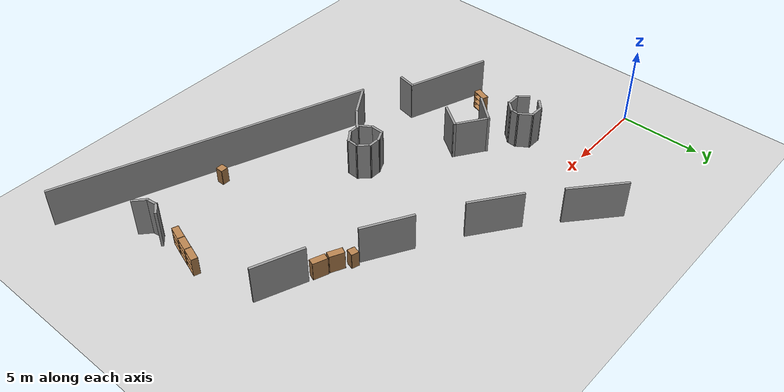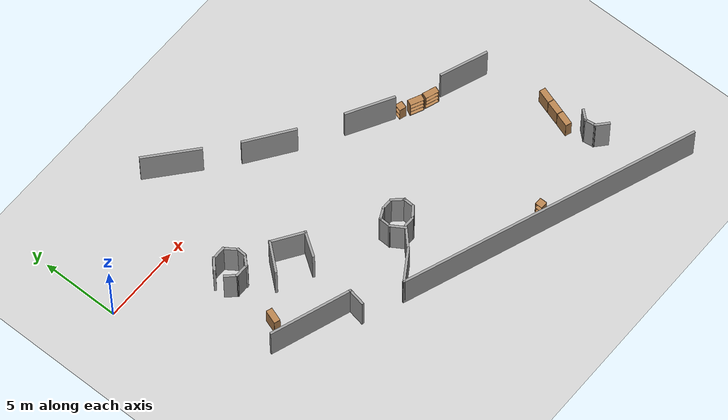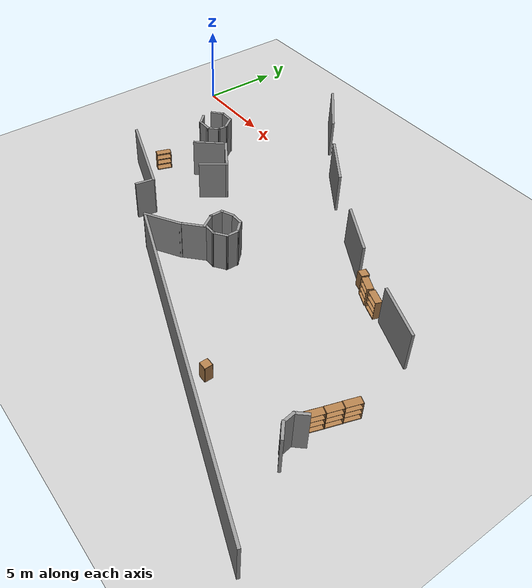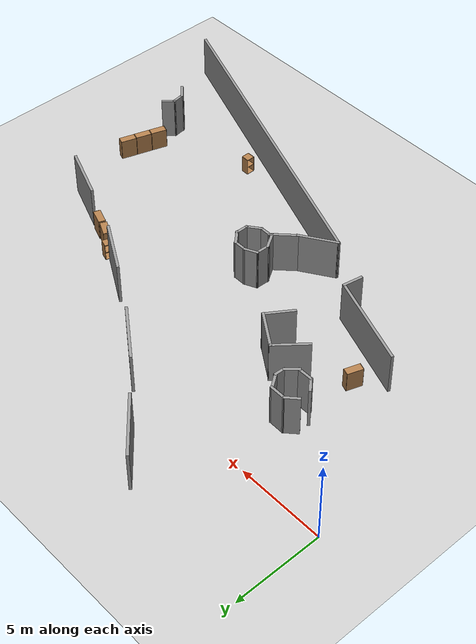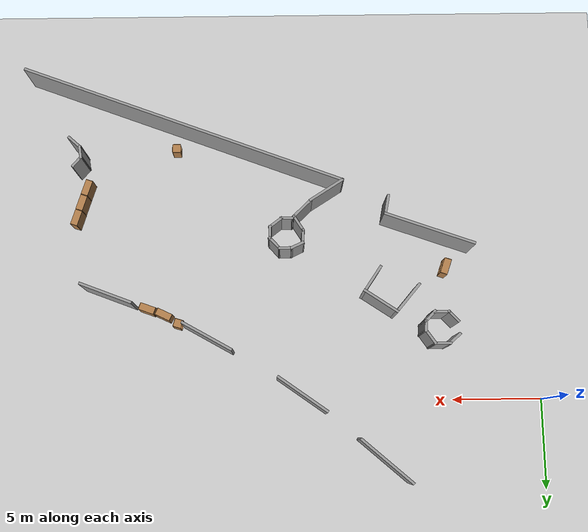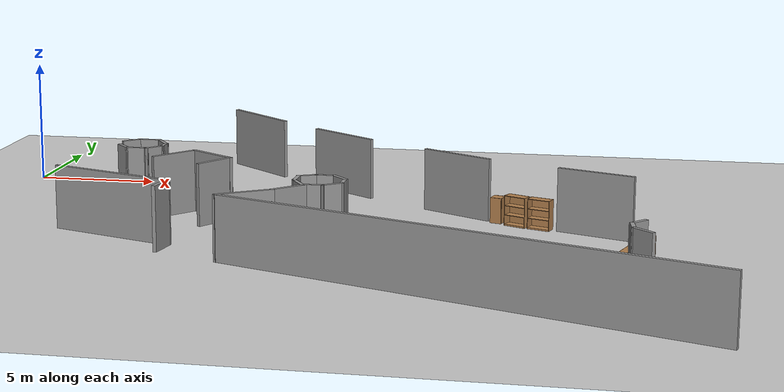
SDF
<sdf version="1.6">
 <world name="default">
  <model name="ground_plane">
   <static>1</static>
   <link name="link">
    <collision name="collision">
     <geometry><plane><normal>0 0 1</normal><size>100 100</size></plane></geometry>
     <surface><friction><ode><mu>100</mu><mu2>50</mu2></ode></friction></surface>
    </collision>
    <visual name="visual">
     <cast_shadows>0</cast_shadows>
     <geometry><plane><normal>0 0 1</normal><size>100 100</size></plane></geometry>
     <material>
      <script><uri>file://media/materials/scripts/gazebo.material</uri><name>Gazebo/Grey</name></script>
     </material>
    </visual>
   </link>
  </model>
  <model name="mall_new_reduce_size">
   <pose>-6.8092 7.5529 0 0 -0 0</pose>
   <link name="Wall_137">
    <collision name="Wall_137_Collision">
     <geometry><box><size>3.68143 0.15 2.5</size></box></geometry>
     <pose>0 0 1.25 0 -0 0</pose>
    </collision>
    <visual name="Wall_137_Visual">
     <pose>0 0 1.25 0 -0 0</pose>
     <geometry><box><size>3.68143 0.15 2.5</size></box></geometry>
     <material>
      <script><uri>file://media/materials/scripts/gazebo.material</uri><name>Gazebo/Grey</name></script>
      <ambient>1 1 1 1</ambient>
     </material>
     <meta><layer>0</layer></meta>
    </visual>
    <pose>15.8732 -4.24673 0 0 -0 -0.713439</pose>
   </link>
   <link name="Wall_140">
    <collision name="Wall_140_Collision">
     <geometry><box><size>3.35827 0.15 2.5</size></box></geometry>
     <pose>0 0 1.25 0 -0 0</pose>
    </collision>
    <visual name="Wall_140_Visual">
     <pose>0 0 1.25 0 -0 0</pose>
     <geometry><box><size>3.35827 0.15 2.5</size></box></geometry>
     <material>
      <script><uri>file://media/materials/scripts/gazebo.material</uri><name>Gazebo/Grey</name></script>
      <ambient>1 1 1 1</ambient>
     </material>
     <meta><layer>0</layer></meta>
    </visual>
    <pose>20.3327 -7.86303 0 0 -0 -0.619292</pose>
   </link>
   <link name="Wall_143">
    <collision name="Wall_143_Collision">
     <geometry><box><size>3.17972 0.15 2.5</size></box></geometry>
     <pose>0 0 1.25 0 -0 0</pose>
    </collision>
    <visual name="Wall_143_Visual">
     <pose>0 0 1.25 0 -0 0</pose>
     <geometry><box><size>3.17972 0.15 2.5</size></box></geometry>
     <material>
      <script><uri>file://media/materials/scripts/gazebo.material</uri><name>Gazebo/Grey</name></script>
      <ambient>1 1 1 1</ambient>
     </material>
     <meta><layer>0</layer></meta>
    </visual>
    <pose>25.5439 -11.078 0 0 -0 -0.516247</pose>
   </link>
   <link name="Wall_146">
    <collision name="Wall_146_Collision">
     <geometry><box><size>3.13185 0.15 2.5</size></box></geometry>
     <pose>0 0 1.25 0 -0 0</pose>
    </collision>
    <visual name="Wall_146_Visual">
     <pose>0 0 1.25 0 -0 0</pose>
     <geometry><box><size>3.13185 0.15 2.5</size></box></geometry>
     <material>
      <script><uri>file://media/materials/scripts/gazebo.material</uri><name>Gazebo/Grey</name></script>
      <ambient>1 1 1 1</ambient>
     </material>
     <meta><layer>0</layer></meta>
    </visual>
    <pose>31.1319 -13.5209 0 0 -0 -0.367866</pose>
   </link>
   <link name="Wall_197">
    <collision name="Wall_197_Collision">
     <geometry><box><size>0.959364 0.15 2.5</size></box></geometry>
     <pose>0 0 1.25 0 -0 0</pose>
    </collision>
    <visual name="Wall_197_Visual">
     <pose>0 0 1.25 0 -0 0</pose>
     <geometry><box><size>0.959364 0.15 2.5</size></box></geometry>
     <material>
      <script><uri>file://media/materials/scripts/gazebo.material</uri><name>Gazebo/Grey</name></script>
      <ambient>1 1 1 1</ambient>
     </material>
     <meta><layer>0</layer></meta>
    </visual>
    <pose>33.0516 -22.1883 0 0 -0 2.40775</pose>
   </link>
   <link name="Wall_198">
    <collision name="Wall_198_Collision">
     <geometry><box><size>0.773848 0.15 2.5</size></box></geometry>
     <pose>0 0 1.25 0 -0 0</pose>
    </collision>
    <visual name="Wall_198_Visual">
     <pose>0 0 1.25 0 -0 0</pose>
     <geometry><box><size>0.773848 0.15 2.5</size></box></geometry>
     <material>
      <script><uri>file://media/materials/scripts/gazebo.material</uri><name>Gazebo/Grey</name></script>
      <ambient>1 1 1 1</ambient>
     </material>
     <meta><layer>0</layer></meta>
    </visual>
    <pose>32.7095 -21.6007 0 0 -0 1.70458</pose>
   </link>
   <link name="Wall_199">
    <collision name="Wall_199_Collision">
     <geometry><box><size>0.798164 0.15 2.5</size></box></geometry>
     <pose>0 0 1.25 0 -0 0</pose>
    </collision>
    <visual name="Wall_199_Visual">
     <pose>0 0 1.25 0 -0 0</pose>
     <geometry><box><size>0.798164 0.15 2.5</size></box></geometry>
     <material>
      <script><uri>file://media/materials/scripts/gazebo.material</uri><name>Gazebo/Grey</name></script>
      <ambient>1 1 1 1</ambient>
     </material>
     <meta><layer>0</layer></meta>
    </visual>
    <pose>32.8802 -21.032 0 0 -0 0.856375</pose>
   </link>
   <link name="Wall_205">
    <collision name="Wall_205_Collision">
     <geometry><box><size>19.4256 0.15 2.5</size></box></geometry>
     <pose>0 0 1.25 0 -0 0</pose>
    </collision>
    <visual name="Wall_205_Visual">
     <pose>0 0 1.25 0 -0 0</pose>
     <geometry><box><size>19.4256 0.15 2.5</size></box></geometry>
     <material>
      <script><uri>file://media/materials/scripts/gazebo.material</uri><name>Gazebo/Grey</name></script>
      <ambient>1 1 1 1</ambient>
     </material>
     <meta><layer>0</layer></meta>
    </visual>
    <pose>26.9482 -23.2 0 0 -0 2.78246</pose>
   </link>
   <link name="Wall_207">
    <collision name="Wall_207_Collision">
     <geometry><box><size>2.2822 0.15 2.5</size></box></geometry>
     <pose>0 0 1.25 0 -0 0</pose>
    </collision>
    <visual name="Wall_207_Visual">
     <pose>0 0 1.25 0 -0 0</pose>
     <geometry><box><size>2.2822 0.15 2.5</size></box></geometry>
     <material>
      <script><uri>file://media/materials/scripts/gazebo.material</uri><name>Gazebo/Grey</name></script>
      <ambient>1 1 1 1</ambient>
     </material>
     <meta><layer>0</layer></meta>
    </visual>
    <pose>18.8386 -19.2246 0 0 -0 0.567895</pose>
   </link>
   <link name="Wall_208">
    <collision name="Wall_208_Collision">
     <geometry><box><size>1.61268 0.15 2.5</size></box></geometry>
     <pose>0 0 1.25 0 -0 0</pose>
    </collision>
    <visual name="Wall_208_Visual">
     <pose>0 0 1.25 0 -0 0</pose>
     <geometry><box><size>1.61268 0.15 2.5</size></box></geometry>
     <material>
      <script><uri>file://media/materials/scripts/gazebo.material</uri><name>Gazebo/Grey</name></script>
      <ambient>1 1 1 1</ambient>
     </material>
     <meta><layer>0</layer></meta>
    </visual>
    <pose>20.2619 -18.127 0 0 -0 0.770921</pose>
   </link>
   <link name="Wall_211">
    <collision name="Wall_211_Collision">
     <geometry><box><size>0.75 0.15 2.5</size></box></geometry>
     <pose>0 0 1.25 0 -0 0</pose>
    </collision>
    <visual name="Wall_211_Visual">
     <pose>0 0 1.25 0 -0 0</pose>
     <geometry><box><size>0.75 0.15 2.5</size></box></geometry>
     <material>
      <script><uri>file://media/materials/scripts/gazebo.material</uri><name>Gazebo/Grey</name></script>
      <ambient>1 1 1 1</ambient>
     </material>
     <meta><layer>0</layer></meta>
    </visual>
    <pose>21.0865 -17.6175 0 0 -0 0</pose>
   </link>
   <link name="Wall_212">
    <collision name="Wall_212_Collision">
     <geometry><box><size>0.928514 0.15 2.5</size></box></geometry>
     <pose>0 0 1.25 0 -0 0</pose>
    </collision>
    <visual name="Wall_212_Visual">
     <pose>0 0 1.25 0 -0 0</pose>
     <geometry><box><size>0.928514 0.15 2.5</size></box></geometry>
     <material>
      <script><uri>file://media/materials/scripts/gazebo.material</uri><name>Gazebo/Grey</name></script>
      <ambient>1 1 1 1</ambient>
     </material>
     <meta><layer>0</layer></meta>
    </visual>
    <pose>21.6967 -17.3823 0 0 -0 0.648482</pose>
   </link>
   <link name="Wall_213">
    <collision name="Wall_213_Collision">
     <geometry><box><size>0.794621 0.15 2.5</size></box></geometry>
     <pose>0 0 1.25 0 -0 0</pose>
    </collision>
    <visual name="Wall_213_Visual">
     <pose>0 0 1.25 0 -0 0</pose>
     <geometry><box><size>0.794621 0.15 2.5</size></box></geometry>
     <material>
      <script><uri>file://media/materials/scripts/gazebo.material</uri><name>Gazebo/Grey</name></script>
      <ambient>1 1 1 1</ambient>
     </material>
     <meta><layer>0</layer></meta>
    </visual>
    <pose>22.0259 -16.8252 0 0 -0 1.53167</pose>
   </link>
   <link name="Wall_214">
    <collision name="Wall_214_Collision">
     <geometry><box><size>0.927153 0.15 2.5</size></box></geometry>
     <pose>0 0 1.25 0 -0 0</pose>
    </collision>
    <visual name="Wall_214_Visual">
     <pose>0 0 1.25 0 -0 0</pose>
     <geometry><box><size>0.927153 0.15 2.5</size></box></geometry>
     <material>
      <script><uri>file://media/materials/scripts/gazebo.material</uri><name>Gazebo/Grey</name></script>
      <ambient>1 1 1 1</ambient>
     </material>
     <meta><layer>0</layer></meta>
    </visual>
    <pose>21.7755 -16.2107 0 0 -0 2.314</pose>
   </link>
   <link name="Wall_215">
    <collision name="Wall_215_Collision">
     <geometry><box><size>0.819343 0.15 2.5</size></box></geometry>
     <pose>0 0 1.25 0 -0 0</pose>
    </collision>
    <visual name="Wall_215_Visual">
     <pose>0 0 1.25 0 -0 0</pose>
     <geometry><box><size>0.819343 0.15 2.5</size></box></geometry>
     <material>
      <script><uri>file://media/materials/scripts/gazebo.material</uri><name>Gazebo/Grey</name></script>
      <ambient>1 1 1 1</ambient>
     </material>
     <meta><layer>0</layer></meta>
    </visual>
    <pose>21.1716 -15.9246 0 0 -0 3.14159</pose>
   </link>
   <link name="Wall_216">
    <collision name="Wall_216_Collision">
     <geometry><box><size>0.843381 0.15 2.5</size></box></geometry>
     <pose>0 0 1.25 0 -0 0</pose>
    </collision>
    <visual name="Wall_216_Visual">
     <pose>0 0 1.25 0 -0 0</pose>
     <geometry><box><size>0.843381 0.15 2.5</size></box></geometry>
     <material>
      <script><uri>file://media/materials/scripts/gazebo.material</uri><name>Gazebo/Grey</name></script>
      <ambient>1 1 1 1</ambient>
     </material>
     <meta><layer>0</layer></meta>
    </visual>
    <pose>20.5177 -16.0737 0 0 -0 -2.69705</pose>
   </link>
   <link name="Wall_217">
    <collision name="Wall_217_Collision">
     <geometry><box><size>0.856005 0.15 2.5</size></box></geometry>
     <pose>0 0 1.25 0 -0 0</pose>
    </collision>
    <visual name="Wall_217_Visual">
     <pose>0 0 1.25 0 -0 0</pose>
     <geometry><box><size>0.856005 0.15 2.5</size></box></geometry>
     <material>
      <script><uri>file://media/materials/scripts/gazebo.material</uri><name>Gazebo/Grey</name></script>
      <ambient>1 1 1 1</ambient>
     </material>
     <meta><layer>0</layer></meta>
    </visual>
    <pose>20.1932 -16.5819 0 0 -0 -1.60325</pose>
   </link>
   <link name="Wall_218">
    <collision name="Wall_218_Collision">
     <geometry><box><size>1.06985 0.15 2.5</size></box></geometry>
     <pose>0 0 1.25 0 -0 0</pose>
    </collision>
    <visual name="Wall_218_Visual">
     <pose>0 0 1.25 0 -0 0</pose>
     <geometry><box><size>1.06985 0.15 2.5</size></box></geometry>
     <material>
      <script><uri>file://media/materials/scripts/gazebo.material</uri><name>Gazebo/Grey</name></script>
      <ambient>1 1 1 1</ambient>
     </material>
     <meta><layer>0</layer></meta>
    </visual>
    <pose>20.4263 -17.318 0 0 -0 -1.01029</pose>
   </link>
   <link name="Wall_222">
    <collision name="Wall_222_Collision">
     <geometry><box><size>5.33695 0.15 2.5</size></box></geometry>
     <pose>0 0 1.25 0 -0 0</pose>
    </collision>
    <visual name="Wall_222_Visual">
     <pose>0 0 1.25 0 -0 0</pose>
     <geometry><box><size>5.33695 0.15 2.5</size></box></geometry>
     <material>
      <script><uri>file://media/materials/scripts/gazebo.material</uri><name>Gazebo/Grey</name></script>
      <ambient>1 1 1 1</ambient>
     </material>
     <meta><layer>0</layer></meta>
    </visual>
    <pose>13.1136 -16.9614 0 0 -0 -0.339721</pose>
   </link>
   <link name="Wall_223">
    <collision name="Wall_223_Collision">
     <geometry><box><size>1.17859 0.15 2.5</size></box></geometry>
     <pose>0 0 1.25 0 -0 0</pose>
    </collision>
    <visual name="Wall_223_Visual">
     <pose>0 0 1.25 0 -0 0</pose>
     <geometry><box><size>1.17859 0.15 2.5</size></box></geometry>
     <material>
      <script><uri>file://media/materials/scripts/gazebo.material</uri><name>Gazebo/Grey</name></script>
      <ambient>1 1 1 1</ambient>
     </material>
     <meta><layer>0</layer></meta>
    </visual>
    <pose>15.4636 -18.342 0 0 -0 -1.7571</pose>
   </link>
   <link name="Wall_226">
    <collision name="Wall_226_Collision">
     <geometry><box><size>2.09323 0.15 2.5</size></box></geometry>
     <pose>0 0 1.25 0 -0 0</pose>
    </collision>
    <visual name="Wall_226_Visual">
     <pose>0 0 1.25 0 -0 0</pose>
     <geometry><box><size>2.09323 0.15 2.5</size></box></geometry>
     <material>
      <script><uri>file://media/materials/scripts/gazebo.material</uri><name>Gazebo/Grey</name></script>
      <ambient>1 1 1 1</ambient>
     </material>
     <meta><layer>0</layer></meta>
    </visual>
    <pose>14.4531 -13.0477 0 0 -0 0.87023</pose>
   </link>
   <link name="Wall_227">
    <collision name="Wall_227_Collision">
     <geometry><box><size>2.25142 0.15 2.5</size></box></geometry>
     <pose>0 0 1.25 0 -0 0</pose>
    </collision>
    <visual name="Wall_227_Visual">
     <pose>0 0 1.25 0 -0 0</pose>
     <geometry><box><size>2.25142 0.15 2.5</size></box></geometry>
     <material>
      <script><uri>file://media/materials/scripts/gazebo.material</uri><name>Gazebo/Grey</name></script>
      <ambient>1 1 1 1</ambient>
     </material>
     <meta><layer>0</layer></meta>
    </visual>
    <pose>15.9526 -12.9004 0 0 -0 -0.589881</pose>
   </link>
   <link name="Wall_228">
    <collision name="Wall_228_Collision">
     <geometry><box><size>1.74942 0.15 2.5</size></box></geometry>
     <pose>0 0 1.25 0 -0 0</pose>
    </collision>
    <visual name="Wall_228_Visual">
     <pose>0 0 1.25 0 -0 0</pose>
     <geometry><box><size>1.74942 0.15 2.5</size></box></geometry>
     <material>
      <script><uri>file://media/materials/scripts/gazebo.material</uri><name>Gazebo/Grey</name></script>
      <ambient>1 1 1 1</ambient>
     </material>
     <meta><layer>0</layer></meta>
    </visual>
    <pose>16.3774 -14.136 0 0 -0 -2.166</pose>
   </link>
   <link name="Wall_233">
    <collision name="Wall_233_Collision">
     <geometry><box><size>0.875106 0.15 2.5</size></box></geometry>
     <pose>0 0 1.25 0 -0 0</pose>
    </collision>
    <visual name="Wall_233_Visual">
     <pose>0 0 1.25 0 -0 0</pose>
     <geometry><box><size>0.875106 0.15 2.5</size></box></geometry>
     <material>
      <script><uri>file://media/materials/scripts/gazebo.material</uri><name>Gazebo/Grey</name></script>
      <ambient>1 1 1 1</ambient>
     </material>
     <meta><layer>0</layer></meta>
    </visual>
    <pose>11.9788 -10.7757 0 0 -0 0.744506</pose>
   </link>
   <link name="Wall_234">
    <collision name="Wall_234_Collision">
     <geometry><box><size>0.968033 0.15 2.5</size></box></geometry>
     <pose>0 0 1.25 0 -0 0</pose>
    </collision>
    <visual name="Wall_234_Visual">
     <pose>0 0 1.25 0 -0 0</pose>
     <geometry><box><size>0.968033 0.15 2.5</size></box></geometry>
     <material>
      <script><uri>file://media/materials/scripts/gazebo.material</uri><name>Gazebo/Grey</name></script>
      <ambient>1 1 1 1</ambient>
     </material>
     <meta><layer>0</layer></meta>
    </visual>
    <pose>12.6628 -10.5342 0 0 -0 -0.010249</pose>
   </link>
   <link name="Wall_235">
    <collision name="Wall_235_Collision">
     <geometry><box><size>0.995867 0.15 2.5</size></box></geometry>
     <pose>0 0 1.25 0 -0 0</pose>
    </collision>
    <visual name="Wall_235_Visual">
     <pose>0 0 1.25 0 -0 0</pose>
     <geometry><box><size>0.995867 0.15 2.5</size></box></geometry>
     <material>
      <script><uri>file://media/materials/scripts/gazebo.material</uri><name>Gazebo/Grey</name></script>
      <ambient>1 1 1 1</ambient>
     </material>
     <meta><layer>0</layer></meta>
    </visual>
    <pose>13.3057 -10.8851 0 0 -0 -0.96076</pose>
   </link>
   <link name="Wall_236">
    <collision name="Wall_236_Collision">
     <geometry><box><size>0.675613 0.15 2.5</size></box></geometry>
     <pose>0 0 1.25 0 -0 0</pose>
    </collision>
    <visual name="Wall_236_Visual">
     <pose>0 0 1.25 0 -0 0</pose>
     <geometry><box><size>0.675613 0.15 2.5</size></box></geometry>
     <material>
      <script><uri>file://media/materials/scripts/gazebo.material</uri><name>Gazebo/Grey</name></script>
      <ambient>1 1 1 1</ambient>
     </material>
     <meta><layer>0</layer></meta>
    </visual>
    <pose>13.5396 -11.494 0 0 -0 -1.63464</pose>
   </link>
   <link name="Wall_237">
    <collision name="Wall_237_Collision">
     <geometry><box><size>0.890267 0.15 2.5</size></box></geometry>
     <pose>0 0 1.25 0 -0 0</pose>
    </collision>
    <visual name="Wall_237_Visual">
     <pose>0 0 1.25 0 -0 0</pose>
     <geometry><box><size>0.890267 0.15 2.5</size></box></geometry>
     <material>
      <script><uri>file://media/materials/scripts/gazebo.material</uri><name>Gazebo/Grey</name></script>
      <ambient>1 1 1 1</ambient>
     </material>
     <meta><layer>0</layer></meta>
    </visual>
    <pose>13.2722 -12.0203 0 0 -0 -2.31459</pose>
   </link>
   <link name="Wall_238">
    <collision name="Wall_238_Collision">
     <geometry><box><size>0.954271 0.15 2.5</size></box></geometry>
     <pose>0 0 1.25 0 -0 0</pose>
    </collision>
    <visual name="Wall_238_Visual">
     <pose>0 0 1.25 0 -0 0</pose>
     <geometry><box><size>0.954271 0.15 2.5</size></box></geometry>
     <material>
      <script><uri>file://media/materials/scripts/gazebo.material</uri><name>Gazebo/Grey</name></script>
      <ambient>1 1 1 1</ambient>
     </material>
     <meta><layer>0</layer></meta>
    </visual>
    <pose>12.6446 -12.2601 0 0 -0 -3.1391</pose>
   </link>
   <link name="Wall_242">
    <collision name="Wall_242_Collision">
     <geometry><box><size>0.863418 0.15 2.5</size></box></geometry>
     <pose>0 0 1.25 0 -0 0</pose>
    </collision>
    <visual name="Wall_242_Visual">
     <pose>0 0 1.25 0 -0 0</pose>
     <geometry><box><size>0.863418 0.15 2.5</size></box></geometry>
     <material>
      <script><uri>file://media/materials/scripts/gazebo.material</uri><name>Gazebo/Grey</name></script>
      <ambient>1 1 1 1</ambient>
     </material>
     <meta><layer>0</layer></meta>
    </visual>
    <pose>11.9984 -12.001 0 0 -0 2.32428</pose>
   </link>
   <static>1</static>
  </model>
  <model name="cabinet">
   <static>1</static>
   <link name="cabinet_bottom_plate">
    <inertial>
     <pose>0 0 -1 0 -0 0</pose>
     <inertia><ixx>2.05</ixx><ixy>0</ixy><ixz>0</ixz><iyy>2.05</iyy><iyz>0</iyz><izz>2.05</izz></inertia>
     <mass>25</mass>
    </inertial>
    <collision name="cabinet_bottom_plate_geom">
     <pose>0 0 0.01 0 -0 0</pose>
     <geometry><box><size>0.45 0.45 0.02</size></box></geometry>
    </collision>
    <visual name="cabinet_bottom_plate_geom_visual">
     <pose>0 0 0.01 0 -0 0</pose>
     <geometry><box><size>0.45 0.45 0.02</size></box></geometry>
     <material>
      <script><uri>file://media/materials/scripts/gazebo.material</uri><name>Gazebo/Wood</name></script>
     </material>
    </visual>
    <collision name="cabinet_bottom_plate_geom_cabinet_back_plate">
     <pose>0.235 0 0.51 0 -0 0</pose>
     <geometry><box><size>0.02 0.45 1.02</size></box></geometry>
    </collision>
    <visual name="cabinet_bottom_plate_geom_cabinet_back_plate_visual">
     <pose>0.235 0 0.51 0 -0 0</pose>
     <geometry><box><size>0.02 0.45 1.02</size></box></geometry>
     <material>
      <script><uri>file://media/materials/scripts/gazebo.material</uri><name>Gazebo/Wood</name></script>
     </material>
    </visual>
    <collision name="cabinet_bottom_plate_geom_cabinet_left_plate">
     <pose>0 0.235 0.51 0 -0 0</pose>
     <geometry><box><size>0.45 0.02 1.02</size></box></geometry>
    </collision>
    <visual name="cabinet_bottom_plate_geom_cabinet_left_plate_visual">
     <pose>0 0.235 0.51 0 -0 0</pose>
     <geometry><box><size>0.45 0.02 1.02</size></box></geometry>
     <material>
      <script><uri>file://media/materials/scripts/gazebo.material</uri><name>Gazebo/Wood</name></script>
     </material>
    </visual>
    <collision name="cabinet_bottom_plate_geom_cabinet_middle_plate">
     <pose>0 0 0.51 0 -0 0</pose>
     <geometry><box><size>0.45 0.45 0.02</size></box></geometry>
    </collision>
    <visual name="cabinet_bottom_plate_geom_cabinet_middle_plate_visual">
     <pose>0 0 0.51 0 -0 0</pose>
     <geometry><box><size>0.45 0.45 0.02</size></box></geometry>
     <material>
      <script><uri>file://media/materials/scripts/gazebo.material</uri><name>Gazebo/Wood</name></script>
     </material>
    </visual>
    <collision name="cabinet_bottom_plate_geom_cabinet_right_plate">
     <pose>0 -0.235 0.51 0 -0 0</pose>
     <geometry><box><size>0.45 0.02 1.02</size></box></geometry>
    </collision>
    <visual name="cabinet_bottom_plate_geom_cabinet_right_plate_visual">
     <pose>0 -0.235 0.51 0 -0 0</pose>
     <geometry><box><size>0.45 0.02 1.02</size></box></geometry>
     <material>
      <script><uri>file://media/materials/scripts/gazebo.material</uri><name>Gazebo/Wood</name></script>
     </material>
    </visual>
    <collision name="cabinet_bottom_plate_geom_cabinet_top_plate">
     <pose>0 0 1.01 0 -0 0</pose>
     <geometry><box><size>0.45 0.45 0.02</size></box></geometry>
    </collision>
    <visual name="cabinet_bottom_plate_geom_cabinet_top_plate_visual">
     <pose>0 0 1.01 0 -0 0</pose>
     <geometry><box><size>0.45 0.45 0.02</size></box></geometry>
     <material>
      <script><uri>file://media/materials/scripts/gazebo.material</uri><name>Gazebo/Wood</name></script>
     </material>
    </visual>
   </link>
   <pose>20.618 -14.6754 0 0 -0 0</pose>
  </model>
  <model name="cabinet_0">
   <static>1</static>
   <link name="cabinet_bottom_plate">
    <inertial>
     <pose>0 0 -1 0 -0 0</pose>
     <inertia><ixx>2.05</ixx><ixy>0</ixy><ixz>0</ixz><iyy>2.05</iyy><iyz>0</iyz><izz>2.05</izz></inertia>
     <mass>25</mass>
    </inertial>
    <collision name="cabinet_bottom_plate_geom">
     <pose>0 0 0.01 0 -0 0</pose>
     <geometry><box><size>0.45 0.45 0.02</size></box></geometry>
    </collision>
    <visual name="cabinet_bottom_plate_geom_visual">
     <pose>0 0 0.01 0 -0 0</pose>
     <geometry><box><size>0.45 0.45 0.02</size></box></geometry>
     <material>
      <script><uri>file://media/materials/scripts/gazebo.material</uri><name>Gazebo/Wood</name></script>
     </material>
    </visual>
    <collision name="cabinet_bottom_plate_geom_cabinet_back_plate">
     <pose>0.235 0 0.51 0 -0 0</pose>
     <geometry><box><size>0.02 0.45 1.02</size></box></geometry>
    </collision>
    <visual name="cabinet_bottom_plate_geom_cabinet_back_plate_visual">
     <pose>0.235 0 0.51 0 -0 0</pose>
     <geometry><box><size>0.02 0.45 1.02</size></box></geometry>
     <material>
      <script><uri>file://media/materials/scripts/gazebo.material</uri><name>Gazebo/Wood</name></script>
     </material>
    </visual>
    <collision name="cabinet_bottom_plate_geom_cabinet_left_plate">
     <pose>0 0.235 0.51 0 -0 0</pose>
     <geometry><box><size>0.45 0.02 1.02</size></box></geometry>
    </collision>
    <visual name="cabinet_bottom_plate_geom_cabinet_left_plate_visual">
     <pose>0 0.235 0.51 0 -0 0</pose>
     <geometry><box><size>0.45 0.02 1.02</size></box></geometry>
     <material>
      <script><uri>file://media/materials/scripts/gazebo.material</uri><name>Gazebo/Wood</name></script>
     </material>
    </visual>
    <collision name="cabinet_bottom_plate_geom_cabinet_middle_plate">
     <pose>0 0 0.51 0 -0 0</pose>
     <geometry><box><size>0.45 0.45 0.02</size></box></geometry>
    </collision>
    <visual name="cabinet_bottom_plate_geom_cabinet_middle_plate_visual">
     <pose>0 0 0.51 0 -0 0</pose>
     <geometry><box><size>0.45 0.45 0.02</size></box></geometry>
     <material>
      <script><uri>file://media/materials/scripts/gazebo.material</uri><name>Gazebo/Wood</name></script>
     </material>
    </visual>
    <collision name="cabinet_bottom_plate_geom_cabinet_right_plate">
     <pose>0 -0.235 0.51 0 -0 0</pose>
     <geometry><box><size>0.45 0.02 1.02</size></box></geometry>
    </collision>
    <visual name="cabinet_bottom_plate_geom_cabinet_right_plate_visual">
     <pose>0 -0.235 0.51 0 -0 0</pose>
     <geometry><box><size>0.45 0.02 1.02</size></box></geometry>
     <material>
      <script><uri>file://media/materials/scripts/gazebo.material</uri><name>Gazebo/Wood</name></script>
     </material>
    </visual>
    <collision name="cabinet_bottom_plate_geom_cabinet_top_plate">
     <pose>0 0 1.01 0 -0 0</pose>
     <geometry><box><size>0.45 0.45 0.02</size></box></geometry>
    </collision>
    <visual name="cabinet_bottom_plate_geom_cabinet_top_plate_visual">
     <pose>0 0 1.01 0 -0 0</pose>
     <geometry><box><size>0.45 0.45 0.02</size></box></geometry>
     <material>
      <script><uri>file://media/materials/scripts/gazebo.material</uri><name>Gazebo/Wood</name></script>
     </material>
    </visual>
   </link>
   <pose>20.4629 -4.41411 0 0 0 -0.291943</pose>
  </model>
  <model name="bookshelf_19">
   <static>1</static>
   <link name="link">
    <inertial><mass>1</mass></inertial>
    <collision name="back">
     <pose>0 0.005 0.6 0 -0 0</pose>
     <geometry><box><size>0.9 0.01 1.2</size></box></geometry>
    </collision>
    <visual name="visual1">
     <pose>0 0.005 0.6 0 -0 0</pose>
     <geometry><box><size>0.9 0.01 1.2</size></box></geometry>
     <material>
      <script><uri>file://media/materials/scripts/gazebo.material</uri><name>Gazebo/Wood</name></script>
     </material>
    </visual>
    <collision name="left_side">
     <pose>0.45 -0.195 0.6 0 -0 0</pose>
     <geometry><box><size>0.02 0.4 1.2</size></box></geometry>
    </collision>
    <visual name="visual2">
     <pose>0.45 -0.195 0.6 0 -0 0</pose>
     <geometry><box><size>0.02 0.4 1.2</size></box></geometry>
     <material>
      <script><uri>file://media/materials/scripts/gazebo.material</uri><name>Gazebo/Wood</name></script>
     </material>
    </visual>
    <collision name="right_side">
     <pose>-0.45 -0.195 0.6 0 -0 0</pose>
     <geometry><box><size>0.02 0.4 1.2</size></box></geometry>
    </collision>
    <visual name="visual3">
     <pose>-0.45 -0.195 0.6 0 -0 0</pose>
     <geometry><box><size>0.02 0.4 1.2</size></box></geometry>
     <material>
      <script><uri>file://media/materials/scripts/gazebo.material</uri><name>Gazebo/Wood</name></script>
     </material>
    </visual>
    <collision name="bottom">
     <pose>0 -0.195 0.03 0 -0 0</pose>
     <geometry><box><size>0.88 0.4 0.06</size></box></geometry>
    </collision>
    <visual name="visual4">
     <pose>0 -0.195 0.03 0 -0 0</pose>
     <geometry><box><size>0.88 0.4 0.06</size></box></geometry>
     <material>
      <script><uri>file://media/materials/scripts/gazebo.material</uri><name>Gazebo/Wood</name></script>
     </material>
    </visual>
    <collision name="top">
     <pose>0 -0.195 1.19 0 -0 0</pose>
     <geometry><box><size>0.88 0.4 0.02</size></box></geometry>
    </collision>
    <visual name="visual5">
     <pose>0 -0.195 1.19 0 -0 0</pose>
     <geometry><box><size>0.88 0.4 0.02</size></box></geometry>
     <material>
      <script><uri>file://media/materials/scripts/gazebo.material</uri><name>Gazebo/Wood</name></script>
     </material>
    </visual>
    <collision name="low_shelf">
     <pose>0 -0.195 0.43 0 -0 0</pose>
     <geometry><box><size>0.88 0.4 0.02</size></box></geometry>
    </collision>
    <visual name="visual6">
     <pose>0 -0.195 0.43 0 -0 0</pose>
     <geometry><box><size>0.88 0.4 0.02</size></box></geometry>
     <material>
      <script><uri>file://media/materials/scripts/gazebo.material</uri><name>Gazebo/Wood</name></script>
     </material>
    </visual>
    <collision name="high_shelf">
     <pose>0 -0.195 0.8 0 -0 0</pose>
     <geometry><box><size>0.88 0.4 0.02</size></box></geometry>
    </collision>
    <visual name="visual7">
     <pose>0 -0.195 0.8 0 -0 0</pose>
     <geometry><box><size>0.88 0.4 0.02</size></box></geometry>
     <material>
      <script><uri>file://media/materials/scripts/gazebo.material</uri><name>Gazebo/Wood</name></script>
     </material>
    </visual>
   </link>
   <pose>5.07083 -7.42391 0 0 -0 1.24027</pose>
  </model>
  <model name="bookshelf_20">
   <static>1</static>
   <link name="link">
    <inertial><mass>1</mass></inertial>
    <collision name="back">
     <pose>0 0.005 0.6 0 -0 0</pose>
     <geometry><box><size>0.9 0.01 1.2</size></box></geometry>
    </collision>
    <visual name="visual1">
     <pose>0 0.005 0.6 0 -0 0</pose>
     <geometry><box><size>0.9 0.01 1.2</size></box></geometry>
     <material>
      <script><uri>file://media/materials/scripts/gazebo.material</uri><name>Gazebo/Wood</name></script>
     </material>
    </visual>
    <collision name="left_side">
     <pose>0.45 -0.195 0.6 0 -0 0</pose>
     <geometry><box><size>0.02 0.4 1.2</size></box></geometry>
    </collision>
    <visual name="visual2">
     <pose>0.45 -0.195 0.6 0 -0 0</pose>
     <geometry><box><size>0.02 0.4 1.2</size></box></geometry>
     <material>
      <script><uri>file://media/materials/scripts/gazebo.material</uri><name>Gazebo/Wood</name></script>
     </material>
    </visual>
    <collision name="right_side">
     <pose>-0.45 -0.195 0.6 0 -0 0</pose>
     <geometry><box><size>0.02 0.4 1.2</size></box></geometry>
    </collision>
    <visual name="visual3">
     <pose>-0.45 -0.195 0.6 0 -0 0</pose>
     <geometry><box><size>0.02 0.4 1.2</size></box></geometry>
     <material>
      <script><uri>file://media/materials/scripts/gazebo.material</uri><name>Gazebo/Wood</name></script>
     </material>
    </visual>
    <collision name="bottom">
     <pose>0 -0.195 0.03 0 -0 0</pose>
     <geometry><box><size>0.88 0.4 0.06</size></box></geometry>
    </collision>
    <visual name="visual4">
     <pose>0 -0.195 0.03 0 -0 0</pose>
     <geometry><box><size>0.88 0.4 0.06</size></box></geometry>
     <material>
      <script><uri>file://media/materials/scripts/gazebo.material</uri><name>Gazebo/Wood</name></script>
     </material>
    </visual>
    <collision name="top">
     <pose>0 -0.195 1.19 0 -0 0</pose>
     <geometry><box><size>0.88 0.4 0.02</size></box></geometry>
    </collision>
    <visual name="visual5">
     <pose>0 -0.195 1.19 0 -0 0</pose>
     <geometry><box><size>0.88 0.4 0.02</size></box></geometry>
     <material>
      <script><uri>file://media/materials/scripts/gazebo.material</uri><name>Gazebo/Wood</name></script>
     </material>
    </visual>
    <collision name="low_shelf">
     <pose>0 -0.195 0.43 0 -0 0</pose>
     <geometry><box><size>0.88 0.4 0.02</size></box></geometry>
    </collision>
    <visual name="visual6">
     <pose>0 -0.195 0.43 0 -0 0</pose>
     <geometry><box><size>0.88 0.4 0.02</size></box></geometry>
     <material>
      <script><uri>file://media/materials/scripts/gazebo.material</uri><name>Gazebo/Wood</name></script>
     </material>
    </visual>
    <collision name="high_shelf">
     <pose>0 -0.195 0.8 0 -0 0</pose>
     <geometry><box><size>0.88 0.4 0.02</size></box></geometry>
    </collision>
    <visual name="visual7">
     <pose>0 -0.195 0.8 0 -0 0</pose>
     <geometry><box><size>0.88 0.4 0.02</size></box></geometry>
     <material>
      <script><uri>file://media/materials/scripts/gazebo.material</uri><name>Gazebo/Wood</name></script>
     </material>
    </visual>
   </link>
   <pose>25.5639 -12.2686 0 0 -0 1.24694</pose>
  </model>
  <model name="bookshelf_21">
   <static>1</static>
   <link name="link">
    <inertial><mass>1</mass></inertial>
    <collision name="back">
     <pose>0 0.005 0.6 0 -0 0</pose>
     <geometry><box><size>0.9 0.01 1.2</size></box></geometry>
    </collision>
    <visual name="visual1">
     <pose>0 0.005 0.6 0 -0 0</pose>
     <geometry><box><size>0.9 0.01 1.2</size></box></geometry>
     <material>
      <script><uri>file://media/materials/scripts/gazebo.material</uri><name>Gazebo/Wood</name></script>
     </material>
    </visual>
    <collision name="left_side">
     <pose>0.45 -0.195 0.6 0 -0 0</pose>
     <geometry><box><size>0.02 0.4 1.2</size></box></geometry>
    </collision>
    <visual name="visual2">
     <pose>0.45 -0.195 0.6 0 -0 0</pose>
     <geometry><box><size>0.02 0.4 1.2</size></box></geometry>
     <material>
      <script><uri>file://media/materials/scripts/gazebo.material</uri><name>Gazebo/Wood</name></script>
     </material>
    </visual>
    <collision name="right_side">
     <pose>-0.45 -0.195 0.6 0 -0 0</pose>
     <geometry><box><size>0.02 0.4 1.2</size></box></geometry>
    </collision>
    <visual name="visual3">
     <pose>-0.45 -0.195 0.6 0 -0 0</pose>
     <geometry><box><size>0.02 0.4 1.2</size></box></geometry>
     <material>
      <script><uri>file://media/materials/scripts/gazebo.material</uri><name>Gazebo/Wood</name></script>
     </material>
    </visual>
    <collision name="bottom">
     <pose>0 -0.195 0.03 0 -0 0</pose>
     <geometry><box><size>0.88 0.4 0.06</size></box></geometry>
    </collision>
    <visual name="visual4">
     <pose>0 -0.195 0.03 0 -0 0</pose>
     <geometry><box><size>0.88 0.4 0.06</size></box></geometry>
     <material>
      <script><uri>file://media/materials/scripts/gazebo.material</uri><name>Gazebo/Wood</name></script>
     </material>
    </visual>
    <collision name="top">
     <pose>0 -0.195 1.19 0 -0 0</pose>
     <geometry><box><size>0.88 0.4 0.02</size></box></geometry>
    </collision>
    <visual name="visual5">
     <pose>0 -0.195 1.19 0 -0 0</pose>
     <geometry><box><size>0.88 0.4 0.02</size></box></geometry>
     <material>
      <script><uri>file://media/materials/scripts/gazebo.material</uri><name>Gazebo/Wood</name></script>
     </material>
    </visual>
    <collision name="low_shelf">
     <pose>0 -0.195 0.43 0 -0 0</pose>
     <geometry><box><size>0.88 0.4 0.02</size></box></geometry>
    </collision>
    <visual name="visual6">
     <pose>0 -0.195 0.43 0 -0 0</pose>
     <geometry><box><size>0.88 0.4 0.02</size></box></geometry>
     <material>
      <script><uri>file://media/materials/scripts/gazebo.material</uri><name>Gazebo/Wood</name></script>
     </material>
    </visual>
    <collision name="high_shelf">
     <pose>0 -0.195 0.8 0 -0 0</pose>
     <geometry><box><size>0.88 0.4 0.02</size></box></geometry>
    </collision>
    <visual name="visual7">
     <pose>0 -0.195 0.8 0 -0 0</pose>
     <geometry><box><size>0.88 0.4 0.02</size></box></geometry>
     <material>
      <script><uri>file://media/materials/scripts/gazebo.material</uri><name>Gazebo/Wood</name></script>
     </material>
    </visual>
   </link>
   <pose>25.8488 -11.3877 0 0 -0 1.25818</pose>
  </model>
  <model name="bookshelf_22">
   <static>1</static>
   <link name="link">
    <inertial><mass>1</mass></inertial>
    <collision name="back">
     <pose>0 0.005 0.6 0 -0 0</pose>
     <geometry><box><size>0.9 0.01 1.2</size></box></geometry>
    </collision>
    <visual name="visual1">
     <pose>0 0.005 0.6 0 -0 0</pose>
     <geometry><box><size>0.9 0.01 1.2</size></box></geometry>
     <material>
      <script><uri>file://media/materials/scripts/gazebo.material</uri><name>Gazebo/Wood</name></script>
     </material>
    </visual>
    <collision name="left_side">
     <pose>0.45 -0.195 0.6 0 -0 0</pose>
     <geometry><box><size>0.02 0.4 1.2</size></box></geometry>
    </collision>
    <visual name="visual2">
     <pose>0.45 -0.195 0.6 0 -0 0</pose>
     <geometry><box><size>0.02 0.4 1.2</size></box></geometry>
     <material>
      <script><uri>file://media/materials/scripts/gazebo.material</uri><name>Gazebo/Wood</name></script>
     </material>
    </visual>
    <collision name="right_side">
     <pose>-0.45 -0.195 0.6 0 -0 0</pose>
     <geometry><box><size>0.02 0.4 1.2</size></box></geometry>
    </collision>
    <visual name="visual3">
     <pose>-0.45 -0.195 0.6 0 -0 0</pose>
     <geometry><box><size>0.02 0.4 1.2</size></box></geometry>
     <material>
      <script><uri>file://media/materials/scripts/gazebo.material</uri><name>Gazebo/Wood</name></script>
     </material>
    </visual>
    <collision name="bottom">
     <pose>0 -0.195 0.03 0 -0 0</pose>
     <geometry><box><size>0.88 0.4 0.06</size></box></geometry>
    </collision>
    <visual name="visual4">
     <pose>0 -0.195 0.03 0 -0 0</pose>
     <geometry><box><size>0.88 0.4 0.06</size></box></geometry>
     <material>
      <script><uri>file://media/materials/scripts/gazebo.material</uri><name>Gazebo/Wood</name></script>
     </material>
    </visual>
    <collision name="top">
     <pose>0 -0.195 1.19 0 -0 0</pose>
     <geometry><box><size>0.88 0.4 0.02</size></box></geometry>
    </collision>
    <visual name="visual5">
     <pose>0 -0.195 1.19 0 -0 0</pose>
     <geometry><box><size>0.88 0.4 0.02</size></box></geometry>
     <material>
      <script><uri>file://media/materials/scripts/gazebo.material</uri><name>Gazebo/Wood</name></script>
     </material>
    </visual>
    <collision name="low_shelf">
     <pose>0 -0.195 0.43 0 -0 0</pose>
     <geometry><box><size>0.88 0.4 0.02</size></box></geometry>
    </collision>
    <visual name="visual6">
     <pose>0 -0.195 0.43 0 -0 0</pose>
     <geometry><box><size>0.88 0.4 0.02</size></box></geometry>
     <material>
      <script><uri>file://media/materials/scripts/gazebo.material</uri><name>Gazebo/Wood</name></script>
     </material>
    </visual>
    <collision name="high_shelf">
     <pose>0 -0.195 0.8 0 -0 0</pose>
     <geometry><box><size>0.88 0.4 0.02</size></box></geometry>
    </collision>
    <visual name="visual7">
     <pose>0 -0.195 0.8 0 -0 0</pose>
     <geometry><box><size>0.88 0.4 0.02</size></box></geometry>
     <material>
      <script><uri>file://media/materials/scripts/gazebo.material</uri><name>Gazebo/Wood</name></script>
     </material>
    </visual>
   </link>
   <pose>26.1269 -10.5065 0 0 -0 1.25332</pose>
  </model>
  <model name="bookshelf_27">
   <static>1</static>
   <link name="link">
    <inertial><mass>1</mass></inertial>
    <collision name="back">
     <pose>0 0.005 0.6 0 -0 0</pose>
     <geometry><box><size>0.9 0.01 1.2</size></box></geometry>
    </collision>
    <visual name="visual1">
     <pose>0 0.005 0.6 0 -0 0</pose>
     <geometry><box><size>0.9 0.01 1.2</size></box></geometry>
     <material>
      <script><uri>file://media/materials/scripts/gazebo.material</uri><name>Gazebo/Wood</name></script>
     </material>
    </visual>
    <collision name="left_side">
     <pose>0.45 -0.195 0.6 0 -0 0</pose>
     <geometry><box><size>0.02 0.4 1.2</size></box></geometry>
    </collision>
    <visual name="visual2">
     <pose>0.45 -0.195 0.6 0 -0 0</pose>
     <geometry><box><size>0.02 0.4 1.2</size></box></geometry>
     <material>
      <script><uri>file://media/materials/scripts/gazebo.material</uri><name>Gazebo/Wood</name></script>
     </material>
    </visual>
    <collision name="right_side">
     <pose>-0.45 -0.195 0.6 0 -0 0</pose>
     <geometry><box><size>0.02 0.4 1.2</size></box></geometry>
    </collision>
    <visual name="visual3">
     <pose>-0.45 -0.195 0.6 0 -0 0</pose>
     <geometry><box><size>0.02 0.4 1.2</size></box></geometry>
     <material>
      <script><uri>file://media/materials/scripts/gazebo.material</uri><name>Gazebo/Wood</name></script>
     </material>
    </visual>
    <collision name="bottom">
     <pose>0 -0.195 0.03 0 -0 0</pose>
     <geometry><box><size>0.88 0.4 0.06</size></box></geometry>
    </collision>
    <visual name="visual4">
     <pose>0 -0.195 0.03 0 -0 0</pose>
     <geometry><box><size>0.88 0.4 0.06</size></box></geometry>
     <material>
      <script><uri>file://media/materials/scripts/gazebo.material</uri><name>Gazebo/Wood</name></script>
     </material>
    </visual>
    <collision name="top">
     <pose>0 -0.195 1.19 0 -0 0</pose>
     <geometry><box><size>0.88 0.4 0.02</size></box></geometry>
    </collision>
    <visual name="visual5">
     <pose>0 -0.195 1.19 0 -0 0</pose>
     <geometry><box><size>0.88 0.4 0.02</size></box></geometry>
     <material>
      <script><uri>file://media/materials/scripts/gazebo.material</uri><name>Gazebo/Wood</name></script>
     </material>
    </visual>
    <collision name="low_shelf">
     <pose>0 -0.195 0.43 0 -0 0</pose>
     <geometry><box><size>0.88 0.4 0.02</size></box></geometry>
    </collision>
    <visual name="visual6">
     <pose>0 -0.195 0.43 0 -0 0</pose>
     <geometry><box><size>0.88 0.4 0.02</size></box></geometry>
     <material>
      <script><uri>file://media/materials/scripts/gazebo.material</uri><name>Gazebo/Wood</name></script>
     </material>
    </visual>
    <collision name="high_shelf">
     <pose>0 -0.195 0.8 0 -0 0</pose>
     <geometry><box><size>0.88 0.4 0.02</size></box></geometry>
    </collision>
    <visual name="visual7">
     <pose>0 -0.195 0.8 0 -0 0</pose>
     <geometry><box><size>0.88 0.4 0.02</size></box></geometry>
     <material>
      <script><uri>file://media/materials/scripts/gazebo.material</uri><name>Gazebo/Wood</name></script>
     </material>
    </visual>
   </link>
   <pose>22.2555 -5.07738 0 0 0 -0.349528</pose>
  </model>
  <model name="bookshelf_28">
   <static>1</static>
   <link name="link">
    <inertial><mass>1</mass></inertial>
    <collision name="back">
     <pose>0 0.005 0.6 0 -0 0</pose>
     <geometry><box><size>0.9 0.01 1.2</size></box></geometry>
    </collision>
    <visual name="visual1">
     <pose>0 0.005 0.6 0 -0 0</pose>
     <geometry><box><size>0.9 0.01 1.2</size></box></geometry>
     <material>
      <script><uri>file://media/materials/scripts/gazebo.material</uri><name>Gazebo/Wood</name></script>
     </material>
    </visual>
    <collision name="left_side">
     <pose>0.45 -0.195 0.6 0 -0 0</pose>
     <geometry><box><size>0.02 0.4 1.2</size></box></geometry>
    </collision>
    <visual name="visual2">
     <pose>0.45 -0.195 0.6 0 -0 0</pose>
     <geometry><box><size>0.02 0.4 1.2</size></box></geometry>
     <material>
      <script><uri>file://media/materials/scripts/gazebo.material</uri><name>Gazebo/Wood</name></script>
     </material>
    </visual>
    <collision name="right_side">
     <pose>-0.45 -0.195 0.6 0 -0 0</pose>
     <geometry><box><size>0.02 0.4 1.2</size></box></geometry>
    </collision>
    <visual name="visual3">
     <pose>-0.45 -0.195 0.6 0 -0 0</pose>
     <geometry><box><size>0.02 0.4 1.2</size></box></geometry>
     <material>
      <script><uri>file://media/materials/scripts/gazebo.material</uri><name>Gazebo/Wood</name></script>
     </material>
    </visual>
    <collision name="bottom">
     <pose>0 -0.195 0.03 0 -0 0</pose>
     <geometry><box><size>0.88 0.4 0.06</size></box></geometry>
    </collision>
    <visual name="visual4">
     <pose>0 -0.195 0.03 0 -0 0</pose>
     <geometry><box><size>0.88 0.4 0.06</size></box></geometry>
     <material>
      <script><uri>file://media/materials/scripts/gazebo.material</uri><name>Gazebo/Wood</name></script>
     </material>
    </visual>
    <collision name="top">
     <pose>0 -0.195 1.19 0 -0 0</pose>
     <geometry><box><size>0.88 0.4 0.02</size></box></geometry>
    </collision>
    <visual name="visual5">
     <pose>0 -0.195 1.19 0 -0 0</pose>
     <geometry><box><size>0.88 0.4 0.02</size></box></geometry>
     <material>
      <script><uri>file://media/materials/scripts/gazebo.material</uri><name>Gazebo/Wood</name></script>
     </material>
    </visual>
    <collision name="low_shelf">
     <pose>0 -0.195 0.43 0 -0 0</pose>
     <geometry><box><size>0.88 0.4 0.02</size></box></geometry>
    </collision>
    <visual name="visual6">
     <pose>0 -0.195 0.43 0 -0 0</pose>
     <geometry><box><size>0.88 0.4 0.02</size></box></geometry>
     <material>
      <script><uri>file://media/materials/scripts/gazebo.material</uri><name>Gazebo/Wood</name></script>
     </material>
    </visual>
    <collision name="high_shelf">
     <pose>0 -0.195 0.8 0 -0 0</pose>
     <geometry><box><size>0.88 0.4 0.02</size></box></geometry>
    </collision>
    <visual name="visual7">
     <pose>0 -0.195 0.8 0 -0 0</pose>
     <geometry><box><size>0.88 0.4 0.02</size></box></geometry>
     <material>
      <script><uri>file://media/materials/scripts/gazebo.material</uri><name>Gazebo/Wood</name></script>
     </material>
    </visual>
   </link>
   <pose>21.3407 -4.73451 0 0 0 -0.445357</pose>
  </model>
 </world>
</sdf>
